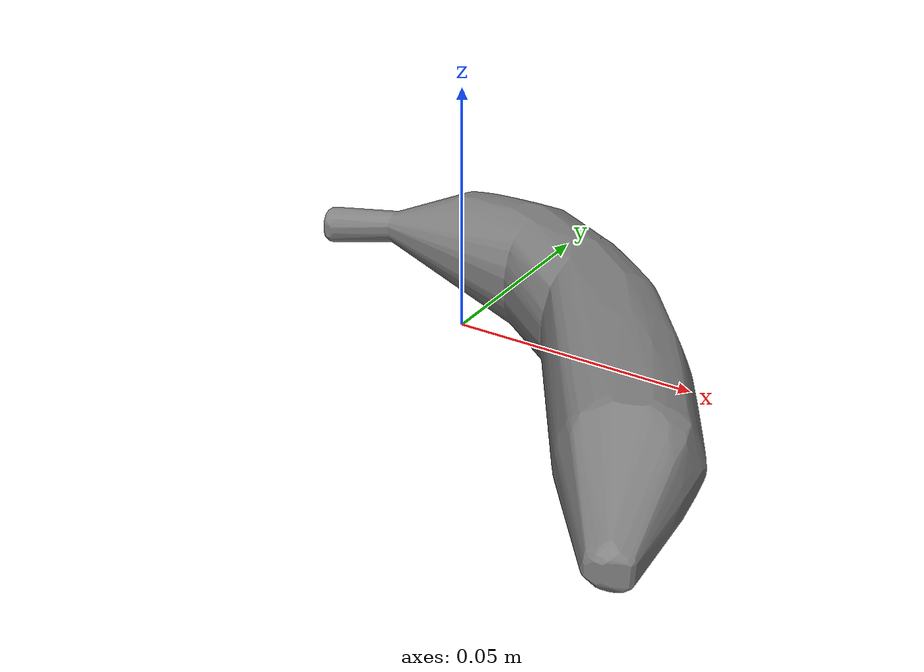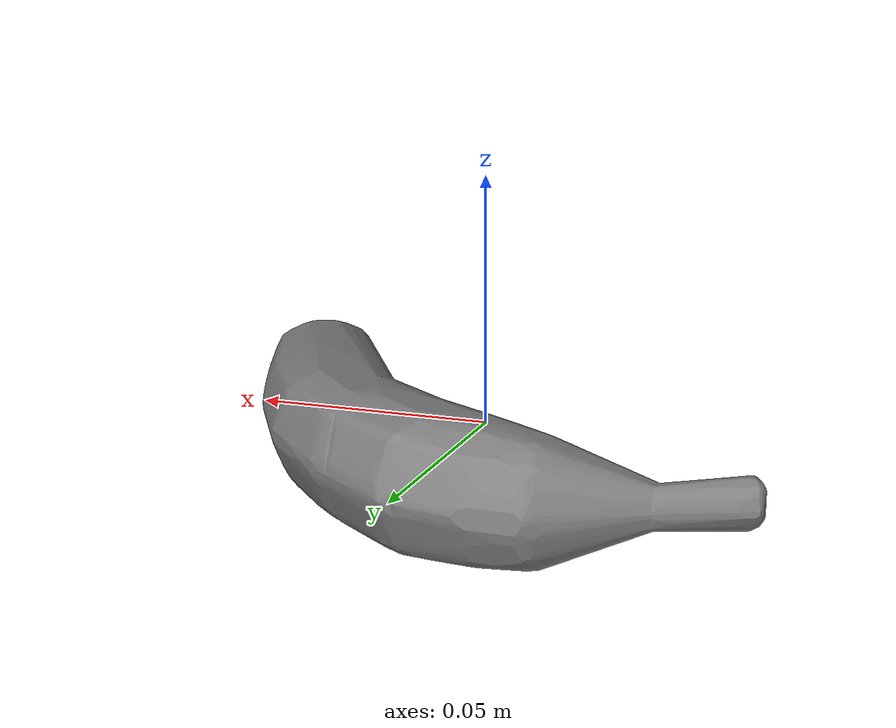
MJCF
<mujoco model="decomposed">
  <compiler angle="radian" />
  <default>
    <default class="visual">

      <geom group="2" type="mesh" contype="1" conaffinity="1" />
    </default>
    <default class="collision">
      <geom group="3" type="mesh" />
    </default>
  </default>
  <asset>
    <mesh file="../../meshh/ddg-gd_banana_poisson_002/coacd/decomposed/decomposed.obj" scale="0.07999999821186066 0.07999999821186066 0.07999999821186066" />
  </asset>
  <worldbody>
    <body name="decomposed">
      <joint type="free" />
      <geom mesh="decomposed" class="visual" friction=".1 .5 .1" mass="0" />
      <geom mesh="decomposed" class="collision" friction=".1 .5 .1" mass="0.002" />
    </body>
  </worldbody>
</mujoco>
